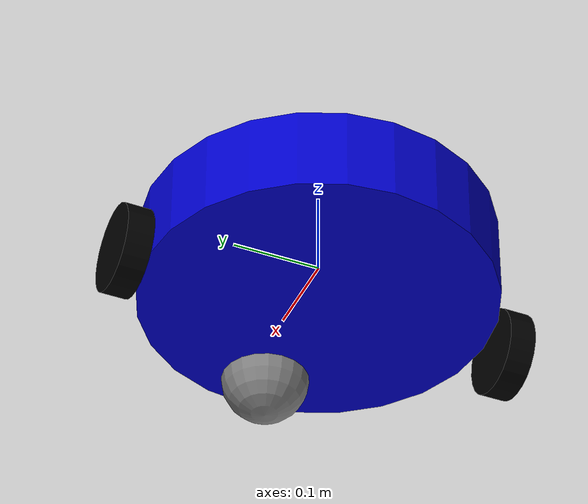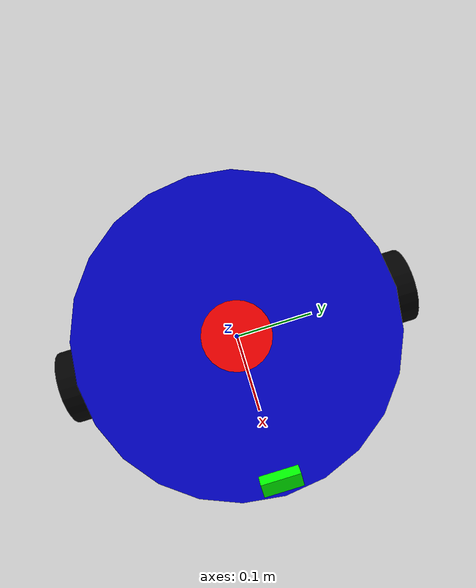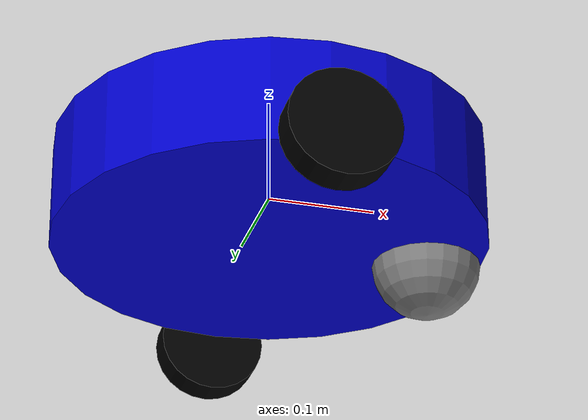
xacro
<?xml version="1.0"?>
<robot name="cleaning_robot" xmlns:xacro="http://ros.org/wiki/xacro">

  <xacro:property name="base_radius" value="0.2"/>
  <xacro:property name="base_height" value="0.1"/>
  <xacro:property name="wheel_radius" value="0.05"/>
  <xacro:property name="wheel_length" value="0.03"/>
  <xacro:property name="wheel_separation" value="0.45"/>

  <!-- Base Link -->
  <link name="base_link">
    <visual>
      <geometry>
        <cylinder radius="${base_radius}" length="${base_height}"/>
      </geometry>
      <material name="blue">
        <color rgba="0 0 0.8 1"/>
      </material>
    </visual>
    <collision>
      <geometry>
        <cylinder radius="${base_radius}" length="${base_height}"/>
      </geometry>
    </collision>
    <inertial>
      <mass value="5.0"/>
      <inertia ixx="0.054" ixy="0" ixz="0" iyy="0.054" iyz="0" izz="0.1"/>
    </inertial>
  </link>

  <!-- Left Wheel -->
  <link name="left_wheel">
    <visual>
      <geometry>
        <cylinder radius="${wheel_radius}" length="${wheel_length}"/>
      </geometry>
      <material name="black">
        <color rgba="0 0 0 1"/>
      </material>
    </visual>
    <collision>
      <geometry>
        <cylinder radius="${wheel_radius}" length="${wheel_length}"/>
      </geometry>
    </collision>
    <inertial>
      <mass value="0.5"/>
      <inertia ixx="0.0003" ixy="0" ixz="0" iyy="0.0003" iyz="0" izz="0.0006"/>
    </inertial>
  </link>

  <joint name="left_wheel_joint" type="continuous">
    <parent link="base_link"/>
    <child link="left_wheel"/>
    <origin xyz="0 ${wheel_separation/2} -0.05" rpy="-1.5708 0 0"/>
    <axis xyz="0 0 1"/>
  </joint>

  <!-- Right Wheel -->
  <link name="right_wheel">
    <visual>
      <geometry>
        <cylinder radius="${wheel_radius}" length="${wheel_length}"/>
      </geometry>
      <material name="black"/>
    </visual>
    <collision>
      <geometry>
        <cylinder radius="${wheel_radius}" length="${wheel_length}"/>
      </geometry>
    </collision>
    <inertial>
      <mass value="0.5"/>
      <inertia ixx="0.0003" ixy="0" ixz="0" iyy="0.0003" iyz="0" izz="0.0006"/>
    </inertial>
  </link>

  <joint name="right_wheel_joint" type="continuous">
    <parent link="base_link"/>
    <child link="right_wheel"/>
    <origin xyz="0 -${wheel_separation/2} -0.05" rpy="-1.5708 0 0"/>
    <axis xyz="0 0 1"/>
  </joint>

  <!-- Caster Wheel -->
  <link name="caster_wheel">
    <visual>
      <geometry>
        <sphere radius="0.05"/>
      </geometry>
      <material name="grey">
        <color rgba="0.5 0.5 0.5 1"/>
      </material>
    </visual>
    <collision>
      <geometry>
        <sphere radius="0.05"/>
      </geometry>
    </collision>
    <inertial>
      <mass value="0.2"/>
      <inertia ixx="0.0002" ixy="0" ixz="0" iyy="0.0002" iyz="0" izz="0.0002"/>
    </inertial>
  </link>

  <joint name="caster_joint" type="fixed">
    <parent link="base_link"/>
    <child link="caster_wheel"/>
    <origin xyz="0.15 0 -0.05"/>
  </joint>

  <!-- Lidar Link -->
  <link name="lidar_link">
    <visual>
      <geometry>
        <cylinder radius="0.04" length="0.05"/>
      </geometry>
      <material name="red">
        <color rgba="1 0 0 1"/>
      </material>
    </visual>
    <collision>
      <geometry>
        <cylinder radius="0.04" length="0.05"/>
      </geometry>
    </collision>
    <inertial>
      <mass value="0.1"/>
      <inertia ixx="0.0001" ixy="0" ixz="0" iyy="0.0001" iyz="0" izz="0.0001"/>
    </inertial>
  </link>

  <joint name="lidar_joint" type="fixed">
    <parent link="base_link"/>
    <child link="lidar_link"/>
    <origin xyz="0 0 0.075"/>
  </joint>

  <!-- Camera Link -->
  <link name="camera_link">
    <visual>
      <geometry>
        <box size="0.02 0.05 0.02"/>
      </geometry>
      <material name="green">
        <color rgba="0 1 0 1"/>
      </material>
    </visual>
    <collision>
      <geometry>
        <box size="0.02 0.05 0.02"/>
      </geometry>
    </collision>
    <inertial>
      <mass value="0.05"/>
      <inertia ixx="0.00001" ixy="0" ixz="0" iyy="0.00001" iyz="0" izz="0.00001"/>
    </inertial>
  </link>

  <joint name="camera_joint" type="fixed">
    <parent link="base_link"/>
    <child link="camera_link"/>
    <!-- Point slightly downwards -->
    <origin xyz="0.18 0 0.05" rpy="0 0.5 0"/>
  </joint>

  <!-- Gazebo specific tags for sensors and control -->
  <gazebo reference="base_link">
    <material>Gazebo/Blue</material>
  </gazebo>

  <gazebo reference="lidar_link">
    <sensor name="lidar" type="gpu_lidar">
      <always_on>true</always_on>
      <update_rate>10</update_rate>
      <topic>scan</topic>
      <gz_frame_id>lidar_link</gz_frame_id>
      <ray>
        <scan>
          <horizontal>
            <samples>360</samples>
            <resolution>1.0</resolution>
            <min_angle>-3.14</min_angle>
            <max_angle>3.14</max_angle>
          </horizontal>
        </scan>
        <range>
          <min>0.12</min>
          <max>10.0</max>
          <resolution>0.015</resolution>
        </range>
      </ray>
    </sensor>
  </gazebo>

  <gazebo reference="camera_link">
    <sensor name="camera" type="camera">
      <always_on>true</always_on>
      <update_rate>30</update_rate>
      <topic>camera/image_raw</topic>
      <gz_frame_id>camera_link</gz_frame_id>
      <camera>
        <horizontal_fov>1.396</horizontal_fov>
        <image>
          <width>640</width>
          <height>480</height>
          <format>R8G8B8</format>
        </image>
        <clip>
          <near>0.02</near>
          <far>300</far>
        </clip>
      </camera>
    </sensor>
  </gazebo>

  <gazebo>
    <plugin filename="gz-sim-diff-drive-system" name="gz::sim::systems::DiffDrive">
      <left_joint>left_wheel_joint</left_joint>
      <right_joint>right_wheel_joint</right_joint>
      <wheel_separation>${wheel_separation}</wheel_separation>
      <wheel_radius>${wheel_radius}</wheel_radius>
      <odom_publish_frequency>50</odom_publish_frequency>
      <topic>cmd_vel</topic>
      <odom_topic>odom</odom_topic>
      <frame_id>odom</frame_id>
      <child_frame_id>base_link</child_frame_id>
    </plugin>
    <plugin filename="gz-sim-joint-state-publisher-system" name="gz::sim::systems::JointStatePublisher"/>
  </gazebo>

</robot>
